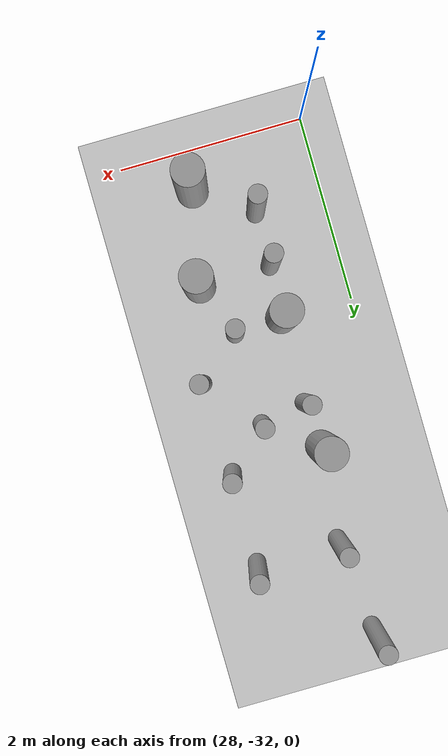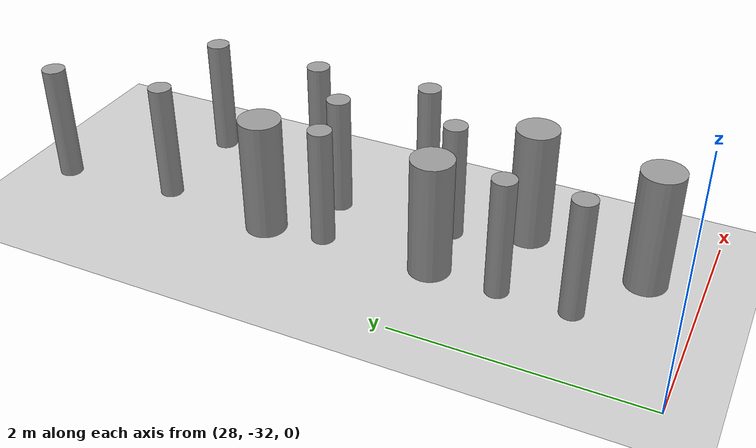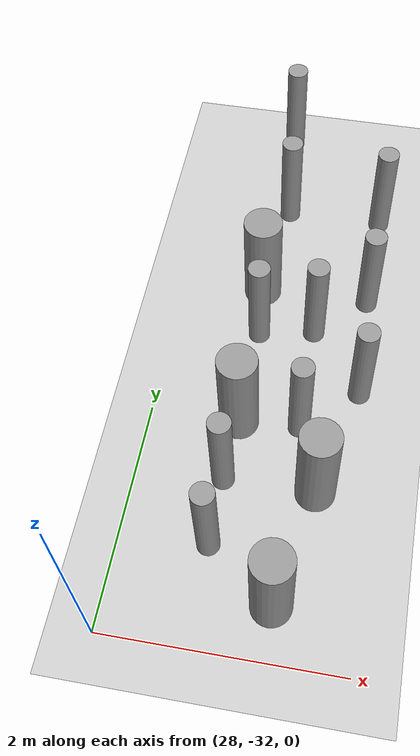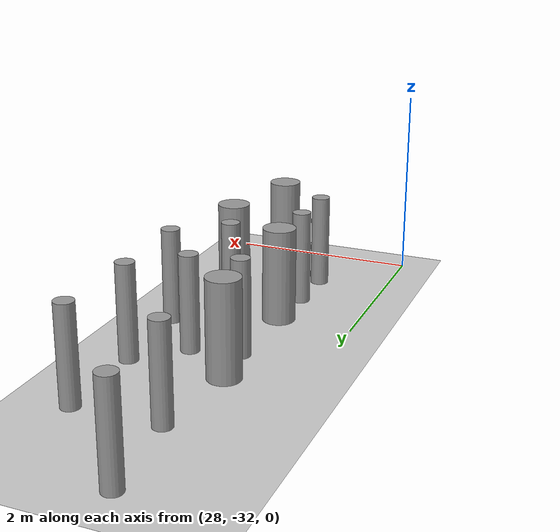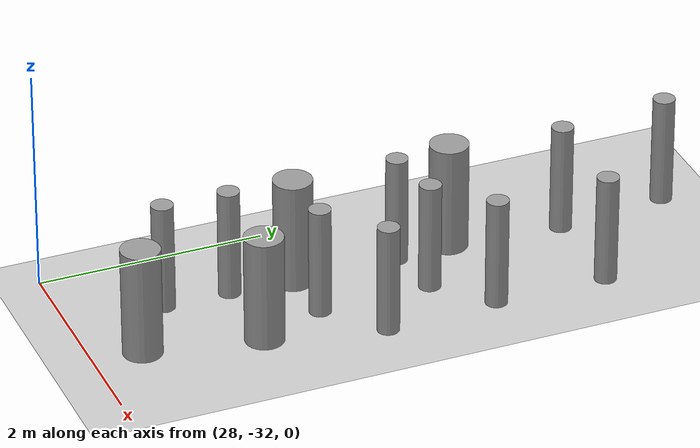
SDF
<sdf version="1.6">
 <world name="default">
  <model name="ground_plane">
   <static>1</static>
   <link name="link">
    <collision name="collision">
     <geometry><plane><normal>0 0 1</normal><size>100 100</size></plane></geometry>
     <surface><friction><ode><mu>100</mu><mu2>50</mu2></ode></friction></surface>
    </collision>
    <visual name="visual">
     <cast_shadows>0</cast_shadows>
     <geometry><plane><normal>0 0 1</normal><size>100 100</size></plane></geometry>
     <material>
      <script><uri>file://media/materials/scripts/gazebo.material</uri><name>Gazebo/Grey</name></script>
     </material>
    </visual>
   </link>
  </model>
  <model name="cyl_wall_clone_clone_1_clone_1_clone_clone_clone_1">
   <link name="link_0">
    <pose>-2.73893 -0.366465 0 0 -0 0</pose>
    <inertial>
     <mass>0.0374993</mass>
     <inertia>
      <ixx>0.00321281</ixx>
      <ixy>0</ixy>
      <ixz>0</ixz>
      <iyy>0.00321281</iyy>
      <iyz>0</iyz>
      <izz>0.000175774</izz>
     </inertia>
    </inertial>
    <visual name="visual">
     <geometry><cylinder><radius>0.0968661</radius><length>1</length></cylinder></geometry>
     <material>
      <lighting>1</lighting>
      <script><uri>file://media/materials/scripts/gazebo.material</uri><name>Gazebo/Grey</name></script>
      <ambient>0.3 0.3 0.3 1</ambient>
      <diffuse>0.7 0.7 0.7 1</diffuse>
      <specular>0.01 0.01 0.01 1</specular>
      <emissive>0 0 0 1</emissive>
     </material>
    </visual>
    <collision name="collision">
     <geometry><cylinder><radius>0.096866</radius><length>1</length></cylinder></geometry>
     <surface>
      <friction>
       <ode><mu>1</mu><mu2>1</mu2><fdir1>0 0 0</fdir1><slip1>0</slip1><slip2>0</slip2></ode>
       <torsional>
        <coefficient>1</coefficient>
        <patch_radius>0</patch_radius>
        <surface_radius>0</surface_radius>
        <use_patch_radius>1</use_patch_radius>
        <ode><slip>0</slip></ode>
       </torsional>
      </friction>
      <bounce><restitution_coefficient>0</restitution_coefficient><threshold>1e+06</threshold></bounce>
      <contact>
       <collide_without_contact>0</collide_without_contact>
       <collide_without_contact_bitmask>1</collide_without_contact_bitmask>
       <collide_bitmask>1</collide_bitmask>
       <ode>
        <soft_cfm>0</soft_cfm>
        <soft_erp>0.2</soft_erp>
        <kp>1e+13</kp>
        <kd>1</kd>
        <max_vel>0.01</max_vel>
        <min_depth>0</min_depth>
       </ode>
       <bullet>
        <split_impulse>1</split_impulse>
        <split_impulse_penetration_threshold>-0.01</split_impulse_penetration_threshold>
        <soft_cfm>0</soft_cfm>
        <soft_erp>0.2</soft_erp>
        <kp>1e+13</kp>
        <kd>1</kd>
       </bullet>
      </contact>
     </surface>
    </collision>
   </link>
   <link name="link_0_clone">
    <pose>-1.73893 0.61877 0 0 -0 0</pose>
    <inertial>
     <mass>0.0374993</mass>
     <inertia>
      <ixx>0.00321281</ixx>
      <ixy>0</ixy>
      <ixz>0</ixz>
      <iyy>0.00321281</iyy>
      <iyz>0</iyz>
      <izz>0.000175774</izz>
     </inertia>
    </inertial>
    <visual name="visual">
     <geometry><cylinder><radius>0.0968661</radius><length>1</length></cylinder></geometry>
     <material>
      <lighting>1</lighting>
      <script><uri>file://media/materials/scripts/gazebo.material</uri><name>Gazebo/Grey</name></script>
      <ambient>0.3 0.3 0.3 1</ambient>
      <diffuse>0.7 0.7 0.7 1</diffuse>
      <specular>0.01 0.01 0.01 1</specular>
      <emissive>0 0 0 1</emissive>
      <shader type="pixel"/>
     </material>
    </visual>
    <collision name="collision">
     <geometry><cylinder><radius>0.096866</radius><length>1</length></cylinder></geometry>
     <surface>
      <friction>
       <ode><mu>1</mu><mu2>1</mu2><fdir1>0 0 0</fdir1><slip1>0</slip1><slip2>0</slip2></ode>
       <torsional>
        <coefficient>1</coefficient>
        <patch_radius>0</patch_radius>
        <surface_radius>0</surface_radius>
        <use_patch_radius>1</use_patch_radius>
        <ode><slip>0</slip></ode>
       </torsional>
      </friction>
      <bounce><restitution_coefficient>0</restitution_coefficient><threshold>1e+06</threshold></bounce>
      <contact>
       <collide_without_contact>0</collide_without_contact>
       <collide_without_contact_bitmask>1</collide_without_contact_bitmask>
       <collide_bitmask>1</collide_bitmask>
       <ode>
        <soft_cfm>0</soft_cfm>
        <soft_erp>0.2</soft_erp>
        <kp>1e+13</kp>
        <kd>1</kd>
        <max_vel>0.01</max_vel>
        <min_depth>0</min_depth>
       </ode>
       <bullet>
        <split_impulse>1</split_impulse>
        <split_impulse_penetration_threshold>-0.01</split_impulse_penetration_threshold>
        <soft_cfm>0</soft_cfm>
        <soft_erp>0.2</soft_erp>
        <kp>1e+13</kp>
        <kd>1</kd>
       </bullet>
      </contact>
     </surface>
    </collision>
   </link>
   <link name="link_0_clone_clone">
    <pose>-0.327073 0.143919 0 0 -0 0</pose>
    <inertial>
     <mass>0.0374993</mass>
     <inertia>
      <ixx>0.00321281</ixx>
      <ixy>0</ixy>
      <ixz>0</ixz>
      <iyy>0.00321281</iyy>
      <iyz>0</iyz>
      <izz>0.000175774</izz>
     </inertia>
    </inertial>
    <visual name="visual">
     <geometry><cylinder><radius>0.0968661</radius><length>1</length></cylinder></geometry>
     <material>
      <lighting>1</lighting>
      <script><uri>file://media/materials/scripts/gazebo.material</uri><name>Gazebo/Grey</name></script>
      <ambient>0.3 0.3 0.3 1</ambient>
      <diffuse>0.7 0.7 0.7 1</diffuse>
      <specular>0.01 0.01 0.01 1</specular>
      <emissive>0 0 0 1</emissive>
      <shader type="pixel"/>
     </material>
    </visual>
    <collision name="collision">
     <geometry><cylinder><radius>0.096866</radius><length>1</length></cylinder></geometry>
     <surface>
      <friction>
       <ode><mu>1</mu><mu2>1</mu2><fdir1>0 0 0</fdir1><slip1>0</slip1><slip2>0</slip2></ode>
       <torsional>
        <coefficient>1</coefficient>
        <patch_radius>0</patch_radius>
        <surface_radius>0</surface_radius>
        <use_patch_radius>1</use_patch_radius>
        <ode><slip>0</slip></ode>
       </torsional>
      </friction>
      <bounce><restitution_coefficient>0</restitution_coefficient><threshold>1e+06</threshold></bounce>
      <contact>
       <collide_without_contact>0</collide_without_contact>
       <collide_without_contact_bitmask>1</collide_without_contact_bitmask>
       <collide_bitmask>1</collide_bitmask>
       <ode>
        <soft_cfm>0</soft_cfm>
        <soft_erp>0.2</soft_erp>
        <kp>1e+13</kp>
        <kd>1</kd>
        <max_vel>0.01</max_vel>
        <min_depth>0</min_depth>
       </ode>
       <bullet>
        <split_impulse>1</split_impulse>
        <split_impulse_penetration_threshold>-0.01</split_impulse_penetration_threshold>
        <soft_cfm>0</soft_cfm>
        <soft_erp>0.2</soft_erp>
        <kp>1e+13</kp>
        <kd>1</kd>
       </bullet>
      </contact>
     </surface>
    </collision>
   </link>
   <link name="link_0_clone_clone_0">
    <pose>1.26107 -0.419359 0 0 -0 0</pose>
    <inertial>
     <mass>0.0374993</mass>
     <inertia>
      <ixx>0.00321281</ixx>
      <ixy>0</ixy>
      <ixz>0</ixz>
      <iyy>0.00321281</iyy>
      <iyz>0</iyz>
      <izz>0.000175774</izz>
     </inertia>
    </inertial>
    <visual name="visual">
     <geometry><cylinder><radius>0.0968661</radius><length>1</length></cylinder></geometry>
     <material>
      <lighting>1</lighting>
      <script><uri>file://media/materials/scripts/gazebo.material</uri><name>Gazebo/Grey</name></script>
      <ambient>0.3 0.3 0.3 1</ambient>
      <diffuse>0.7 0.7 0.7 1</diffuse>
      <specular>0.01 0.01 0.01 1</specular>
      <emissive>0 0 0 1</emissive>
      <shader type="pixel"/>
     </material>
    </visual>
    <collision name="collision">
     <geometry><cylinder><radius>0.096866</radius><length>1</length></cylinder></geometry>
     <surface>
      <friction>
       <ode><mu>1</mu><mu2>1</mu2><fdir1>0 0 0</fdir1><slip1>0</slip1><slip2>0</slip2></ode>
       <torsional>
        <coefficient>1</coefficient>
        <patch_radius>0</patch_radius>
        <surface_radius>0</surface_radius>
        <use_patch_radius>1</use_patch_radius>
        <ode><slip>0</slip></ode>
       </torsional>
      </friction>
      <bounce><restitution_coefficient>0</restitution_coefficient><threshold>1e+06</threshold></bounce>
      <contact>
       <collide_without_contact>0</collide_without_contact>
       <collide_without_contact_bitmask>1</collide_without_contact_bitmask>
       <collide_bitmask>1</collide_bitmask>
       <ode>
        <soft_cfm>0</soft_cfm>
        <soft_erp>0.2</soft_erp>
        <kp>1e+13</kp>
        <kd>1</kd>
        <max_vel>0.01</max_vel>
        <min_depth>0</min_depth>
       </ode>
       <bullet>
        <split_impulse>1</split_impulse>
        <split_impulse_penetration_threshold>-0.01</split_impulse_penetration_threshold>
        <soft_cfm>0</soft_cfm>
        <soft_erp>0.2</soft_erp>
        <kp>1e+13</kp>
        <kd>1</kd>
       </bullet>
      </contact>
     </surface>
    </collision>
   </link>
   <link name="link_0_clone_clone_1">
    <pose>-1.73893 -0.277168 0 0 -0 0</pose>
    <inertial>
     <mass>0.0374993</mass>
     <inertia>
      <ixx>0.00321281</ixx>
      <ixy>0</ixy>
      <ixz>0</ixz>
      <iyy>0.00321281</iyy>
      <iyz>0</iyz>
      <izz>0.000175774</izz>
     </inertia>
    </inertial>
    <visual name="visual">
     <geometry><cylinder><radius>0.0968661</radius><length>1</length></cylinder></geometry>
     <material>
      <lighting>1</lighting>
      <script><uri>file://media/materials/scripts/gazebo.material</uri><name>Gazebo/Grey</name></script>
      <ambient>0.3 0.3 0.3 1</ambient>
      <diffuse>0.7 0.7 0.7 1</diffuse>
      <specular>0.01 0.01 0.01 1</specular>
      <emissive>0 0 0 1</emissive>
      <shader type="pixel"/>
     </material>
    </visual>
    <collision name="collision">
     <geometry><cylinder><radius>0.096866</radius><length>1</length></cylinder></geometry>
     <surface>
      <friction>
       <ode><mu>1</mu><mu2>1</mu2><fdir1>0 0 0</fdir1><slip1>0</slip1><slip2>0</slip2></ode>
       <torsional>
        <coefficient>1</coefficient>
        <patch_radius>0</patch_radius>
        <surface_radius>0</surface_radius>
        <use_patch_radius>1</use_patch_radius>
        <ode><slip>0</slip></ode>
       </torsional>
      </friction>
      <bounce><restitution_coefficient>0</restitution_coefficient><threshold>1e+06</threshold></bounce>
      <contact>
       <collide_without_contact>0</collide_without_contact>
       <collide_without_contact_bitmask>1</collide_without_contact_bitmask>
       <collide_bitmask>1</collide_bitmask>
       <ode>
        <soft_cfm>0</soft_cfm>
        <soft_erp>0.2</soft_erp>
        <kp>1e+13</kp>
        <kd>1</kd>
        <max_vel>0.01</max_vel>
        <min_depth>0</min_depth>
       </ode>
       <bullet>
        <split_impulse>1</split_impulse>
        <split_impulse_penetration_threshold>-0.01</split_impulse_penetration_threshold>
        <soft_cfm>0</soft_cfm>
        <soft_erp>0.2</soft_erp>
        <kp>1e+13</kp>
        <kd>1</kd>
       </bullet>
      </contact>
     </surface>
    </collision>
   </link>
   <link name="link_0_clone_clone_2">
    <pose>-0.738934 0.593961 0 0 -0 0</pose>
    <inertial>
     <mass>0.0374993</mass>
     <inertia>
      <ixx>0.00321281</ixx>
      <ixy>0</ixy>
      <ixz>0</ixz>
      <iyy>0.00321281</iyy>
      <iyz>0</iyz>
      <izz>0.000175774</izz>
     </inertia>
    </inertial>
    <visual name="visual">
     <geometry><cylinder><radius>0.0968661</radius><length>1</length></cylinder></geometry>
     <material>
      <lighting>1</lighting>
      <script><uri>file://media/materials/scripts/gazebo.material</uri><name>Gazebo/Grey</name></script>
      <ambient>0.3 0.3 0.3 1</ambient>
      <diffuse>0.7 0.7 0.7 1</diffuse>
      <specular>0.01 0.01 0.01 1</specular>
      <emissive>0 0 0 1</emissive>
      <shader type="pixel"/>
     </material>
    </visual>
    <collision name="collision">
     <geometry><cylinder><radius>0.096866</radius><length>1</length></cylinder></geometry>
     <surface>
      <friction>
       <ode><mu>1</mu><mu2>1</mu2><fdir1>0 0 0</fdir1><slip1>0</slip1><slip2>0</slip2></ode>
       <torsional>
        <coefficient>1</coefficient>
        <patch_radius>0</patch_radius>
        <surface_radius>0</surface_radius>
        <use_patch_radius>1</use_patch_radius>
        <ode><slip>0</slip></ode>
       </torsional>
      </friction>
      <bounce><restitution_coefficient>0</restitution_coefficient><threshold>1e+06</threshold></bounce>
      <contact>
       <collide_without_contact>0</collide_without_contact>
       <collide_without_contact_bitmask>1</collide_without_contact_bitmask>
       <collide_bitmask>1</collide_bitmask>
       <ode>
        <soft_cfm>0</soft_cfm>
        <soft_erp>0.2</soft_erp>
        <kp>1e+13</kp>
        <kd>1</kd>
        <max_vel>0.01</max_vel>
        <min_depth>0</min_depth>
       </ode>
       <bullet>
        <split_impulse>1</split_impulse>
        <split_impulse_penetration_threshold>-0.01</split_impulse_penetration_threshold>
        <soft_cfm>0</soft_cfm>
        <soft_erp>0.2</soft_erp>
        <kp>1e+13</kp>
        <kd>1</kd>
       </bullet>
      </contact>
     </surface>
    </collision>
   </link>
   <link name="link_0_clone_clone_3">
    <pose>0.261066 0.624849 0 0 -0 0</pose>
    <inertial>
     <mass>0.0374993</mass>
     <inertia>
      <ixx>0.00321281</ixx>
      <ixy>0</ixy>
      <ixz>0</ixz>
      <iyy>0.00321281</iyy>
      <iyz>0</iyz>
      <izz>0.000175774</izz>
     </inertia>
    </inertial>
    <visual name="visual">
     <geometry><cylinder><radius>0.0968661</radius><length>1</length></cylinder></geometry>
     <material>
      <lighting>1</lighting>
      <script><uri>file://media/materials/scripts/gazebo.material</uri><name>Gazebo/Grey</name></script>
      <ambient>0.3 0.3 0.3 1</ambient>
      <diffuse>0.7 0.7 0.7 1</diffuse>
      <specular>0.01 0.01 0.01 1</specular>
      <emissive>0 0 0 1</emissive>
      <shader type="pixel"/>
     </material>
    </visual>
    <collision name="collision">
     <geometry><cylinder><radius>0.096866</radius><length>1</length></cylinder></geometry>
     <surface>
      <friction>
       <ode><mu>1</mu><mu2>1</mu2><fdir1>0 0 0</fdir1><slip1>0</slip1><slip2>0</slip2></ode>
       <torsional>
        <coefficient>1</coefficient>
        <patch_radius>0</patch_radius>
        <surface_radius>0</surface_radius>
        <use_patch_radius>1</use_patch_radius>
        <ode><slip>0</slip></ode>
       </torsional>
      </friction>
      <bounce><restitution_coefficient>0</restitution_coefficient><threshold>1e+06</threshold></bounce>
      <contact>
       <collide_without_contact>0</collide_without_contact>
       <collide_without_contact_bitmask>1</collide_without_contact_bitmask>
       <collide_bitmask>1</collide_bitmask>
       <ode>
        <soft_cfm>0</soft_cfm>
        <soft_erp>0.2</soft_erp>
        <kp>1e+13</kp>
        <kd>1</kd>
        <max_vel>0.01</max_vel>
        <min_depth>0</min_depth>
       </ode>
       <bullet>
        <split_impulse>1</split_impulse>
        <split_impulse_penetration_threshold>-0.01</split_impulse_penetration_threshold>
        <soft_cfm>0</soft_cfm>
        <soft_erp>0.2</soft_erp>
        <kp>1e+13</kp>
        <kd>1</kd>
       </bullet>
      </contact>
     </surface>
    </collision>
   </link>
   <link name="link_0_clone_clone_4">
    <pose>-0.239049 -0.353105 0 0 -0 0</pose>
    <inertial>
     <mass>0.0374993</mass>
     <inertia>
      <ixx>0.00321281</ixx>
      <ixy>0</ixy>
      <ixz>0</ixz>
      <iyy>0.00321281</iyy>
      <iyz>0</iyz>
      <izz>0.000175774</izz>
     </inertia>
    </inertial>
    <visual name="visual">
     <geometry><cylinder><radius>0.0968661</radius><length>1</length></cylinder></geometry>
     <material>
      <lighting>1</lighting>
      <script><uri>file://media/materials/scripts/gazebo.material</uri><name>Gazebo/Grey</name></script>
      <ambient>0.3 0.3 0.3 1</ambient>
      <diffuse>0.7 0.7 0.7 1</diffuse>
      <specular>0.01 0.01 0.01 1</specular>
      <emissive>0 0 0 1</emissive>
      <shader type="pixel"/>
     </material>
    </visual>
    <collision name="collision">
     <geometry><cylinder><radius>0.096866</radius><length>1</length></cylinder></geometry>
     <surface>
      <friction>
       <ode><mu>1</mu><mu2>1</mu2><fdir1>0 0 0</fdir1><slip1>0</slip1><slip2>0</slip2></ode>
       <torsional>
        <coefficient>1</coefficient>
        <patch_radius>0</patch_radius>
        <surface_radius>0</surface_radius>
        <use_patch_radius>1</use_patch_radius>
        <ode><slip>0</slip></ode>
       </torsional>
      </friction>
      <bounce><restitution_coefficient>0</restitution_coefficient><threshold>1e+06</threshold></bounce>
      <contact>
       <collide_without_contact>0</collide_without_contact>
       <collide_without_contact_bitmask>1</collide_without_contact_bitmask>
       <collide_bitmask>1</collide_bitmask>
       <ode>
        <soft_cfm>0</soft_cfm>
        <soft_erp>0.2</soft_erp>
        <kp>1e+13</kp>
        <kd>1</kd>
        <max_vel>0.01</max_vel>
        <min_depth>0</min_depth>
       </ode>
       <bullet>
        <split_impulse>1</split_impulse>
        <split_impulse_penetration_threshold>-0.01</split_impulse_penetration_threshold>
        <soft_cfm>0</soft_cfm>
        <soft_erp>0.2</soft_erp>
        <kp>1e+13</kp>
        <kd>1</kd>
       </bullet>
      </contact>
     </surface>
    </collision>
   </link>
   <link name="link_0_clone_clone_5">
    <pose>0.672792 0.143919 0 0 -0 0</pose>
    <inertial>
     <mass>0.0374993</mass>
     <inertia>
      <ixx>0.00321281</ixx>
      <ixy>0</ixy>
      <ixz>0</ixz>
      <iyy>0.00321281</iyy>
      <iyz>0</iyz>
      <izz>0.000175774</izz>
     </inertia>
    </inertial>
    <visual name="visual">
     <geometry><cylinder><radius>0.0968661</radius><length>1</length></cylinder></geometry>
     <material>
      <lighting>1</lighting>
      <script><uri>file://media/materials/scripts/gazebo.material</uri><name>Gazebo/Grey</name></script>
      <ambient>0.3 0.3 0.3 1</ambient>
      <diffuse>0.7 0.7 0.7 1</diffuse>
      <specular>0.01 0.01 0.01 1</specular>
      <emissive>0 0 0 1</emissive>
      <shader type="pixel"/>
     </material>
    </visual>
    <collision name="collision">
     <geometry><cylinder><radius>0.096866</radius><length>1</length></cylinder></geometry>
     <surface>
      <friction>
       <ode><mu>1</mu><mu2>1</mu2><fdir1>0 0 0</fdir1><slip1>0</slip1><slip2>0</slip2></ode>
       <torsional>
        <coefficient>1</coefficient>
        <patch_radius>0</patch_radius>
        <surface_radius>0</surface_radius>
        <use_patch_radius>1</use_patch_radius>
        <ode><slip>0</slip></ode>
       </torsional>
      </friction>
      <bounce><restitution_coefficient>0</restitution_coefficient><threshold>1e+06</threshold></bounce>
      <contact>
       <collide_without_contact>0</collide_without_contact>
       <collide_without_contact_bitmask>1</collide_without_contact_bitmask>
       <collide_bitmask>1</collide_bitmask>
       <ode>
        <soft_cfm>0</soft_cfm>
        <soft_erp>0.2</soft_erp>
        <kp>1e+13</kp>
        <kd>1</kd>
        <max_vel>0.01</max_vel>
        <min_depth>0</min_depth>
       </ode>
       <bullet>
        <split_impulse>1</split_impulse>
        <split_impulse_penetration_threshold>-0.01</split_impulse_penetration_threshold>
        <soft_cfm>0</soft_cfm>
        <soft_erp>0.2</soft_erp>
        <kp>1e+13</kp>
        <kd>1</kd>
       </bullet>
      </contact>
     </surface>
    </collision>
   </link>
   <link name="link_0_clone_clone_6">
    <pose>1.84596 -0.433423 0 0 -0 0</pose>
    <inertial>
     <mass>0.0374993</mass>
     <inertia>
      <ixx>0.00321281</ixx>
      <ixy>0</ixy>
      <ixz>0</ixz>
      <iyy>0.00321281</iyy>
      <iyz>0</iyz>
      <izz>0.000175774</izz>
     </inertia>
    </inertial>
    <visual name="visual">
     <geometry><cylinder><radius>0.0968661</radius><length>1</length></cylinder></geometry>
     <material>
      <lighting>1</lighting>
      <script><uri>file://media/materials/scripts/gazebo.material</uri><name>Gazebo/Grey</name></script>
      <ambient>0.3 0.3 0.3 1</ambient>
      <diffuse>0.7 0.7 0.7 1</diffuse>
      <specular>0.01 0.01 0.01 1</specular>
      <emissive>0 0 0 1</emissive>
      <shader type="pixel"/>
     </material>
    </visual>
    <collision name="collision">
     <geometry><cylinder><radius>0.096866</radius><length>1</length></cylinder></geometry>
     <surface>
      <friction>
       <ode><mu>1</mu><mu2>1</mu2><fdir1>0 0 0</fdir1><slip1>0</slip1><slip2>0</slip2></ode>
       <torsional>
        <coefficient>1</coefficient>
        <patch_radius>0</patch_radius>
        <surface_radius>0</surface_radius>
        <use_patch_radius>1</use_patch_radius>
        <ode><slip>0</slip></ode>
       </torsional>
      </friction>
      <bounce><restitution_coefficient>0</restitution_coefficient><threshold>1e+06</threshold></bounce>
      <contact>
       <collide_without_contact>0</collide_without_contact>
       <collide_without_contact_bitmask>1</collide_without_contact_bitmask>
       <collide_bitmask>1</collide_bitmask>
       <ode>
        <soft_cfm>0</soft_cfm>
        <soft_erp>0.2</soft_erp>
        <kp>1e+13</kp>
        <kd>1</kd>
        <max_vel>0.01</max_vel>
        <min_depth>0</min_depth>
       </ode>
       <bullet>
        <split_impulse>1</split_impulse>
        <split_impulse_penetration_threshold>-0.01</split_impulse_penetration_threshold>
        <soft_cfm>0</soft_cfm>
        <soft_erp>0.2</soft_erp>
        <kp>1e+13</kp>
        <kd>1</kd>
       </bullet>
      </contact>
     </surface>
    </collision>
   </link>
   <link name="link_1">
    <pose>-0.738934 -0.397931 0 0 -0 0</pose>
    <inertial>
     <mass>0.117398</mass>
     <inertia>
      <ixx>0.0106445</ixx>
      <ixy>0</ixy>
      <ixz>0</ixz>
      <iyy>0.0106445</iyy>
      <iyz>0</iyz>
      <izz>0.00172278</izz>
     </inertia>
    </inertial>
    <visual name="visual">
     <geometry><cylinder><radius>0.171317</radius><length>1</length></cylinder></geometry>
     <material>
      <lighting>1</lighting>
      <script><uri>file://media/materials/scripts/gazebo.material</uri><name>Gazebo/Grey</name></script>
      <ambient>0.3 0.3 0.3 1</ambient>
      <diffuse>0.7 0.7 0.7 1</diffuse>
      <specular>0.01 0.01 0.01 1</specular>
      <emissive>0 0 0 1</emissive>
     </material>
    </visual>
    <collision name="collision">
     <geometry><cylinder><radius>0.171317</radius><length>1</length></cylinder></geometry>
     <surface>
      <friction>
       <ode><mu>1</mu><mu2>1</mu2><fdir1>0 0 0</fdir1><slip1>0</slip1><slip2>0</slip2></ode>
       <torsional>
        <coefficient>1</coefficient>
        <patch_radius>0</patch_radius>
        <surface_radius>0</surface_radius>
        <use_patch_radius>1</use_patch_radius>
        <ode><slip>0</slip></ode>
       </torsional>
      </friction>
      <bounce><restitution_coefficient>0</restitution_coefficient><threshold>1e+06</threshold></bounce>
      <contact>
       <collide_without_contact>0</collide_without_contact>
       <collide_without_contact_bitmask>1</collide_without_contact_bitmask>
       <collide_bitmask>1</collide_bitmask>
       <ode>
        <soft_cfm>0</soft_cfm>
        <soft_erp>0.2</soft_erp>
        <kp>1e+13</kp>
        <kd>1</kd>
        <max_vel>0.01</max_vel>
        <min_depth>0</min_depth>
       </ode>
       <bullet>
        <split_impulse>1</split_impulse>
        <split_impulse_penetration_threshold>-0.01</split_impulse_penetration_threshold>
        <soft_cfm>0</soft_cfm>
        <soft_erp>0.2</soft_erp>
        <kp>1e+13</kp>
        <kd>1</kd>
       </bullet>
      </contact>
     </surface>
    </collision>
   </link>
   <link name="link_1_clone">
    <pose>0.697784 -0.380861 0 0 -0 0</pose>
    <inertial>
     <mass>0.117398</mass>
     <inertia>
      <ixx>0.0106445</ixx>
      <ixy>0</ixy>
      <ixz>0</ixz>
      <iyy>0.0106445</iyy>
      <iyz>0</iyz>
      <izz>0.00172278</izz>
     </inertia>
    </inertial>
    <visual name="visual">
     <geometry><cylinder><radius>0.171317</radius><length>1</length></cylinder></geometry>
     <material>
      <lighting>1</lighting>
      <script><uri>file://media/materials/scripts/gazebo.material</uri><name>Gazebo/Grey</name></script>
      <ambient>0.3 0.3 0.3 1</ambient>
      <diffuse>0.7 0.7 0.7 1</diffuse>
      <specular>0.01 0.01 0.01 1</specular>
      <emissive>0 0 0 1</emissive>
      <shader type="pixel"/>
     </material>
    </visual>
    <collision name="collision">
     <geometry><cylinder><radius>0.171317</radius><length>1</length></cylinder></geometry>
     <surface>
      <friction>
       <ode><mu>1</mu><mu2>1</mu2><fdir1>0 0 0</fdir1><slip1>0</slip1><slip2>0</slip2></ode>
       <torsional>
        <coefficient>1</coefficient>
        <patch_radius>0</patch_radius>
        <surface_radius>0</surface_radius>
        <use_patch_radius>1</use_patch_radius>
        <ode><slip>0</slip></ode>
       </torsional>
      </friction>
      <bounce><restitution_coefficient>0</restitution_coefficient><threshold>1e+06</threshold></bounce>
      <contact>
       <collide_without_contact>0</collide_without_contact>
       <collide_without_contact_bitmask>1</collide_without_contact_bitmask>
       <collide_bitmask>1</collide_bitmask>
       <ode>
        <soft_cfm>0</soft_cfm>
        <soft_erp>0.2</soft_erp>
        <kp>1e+13</kp>
        <kd>1</kd>
        <max_vel>0.01</max_vel>
        <min_depth>0</min_depth>
       </ode>
       <bullet>
        <split_impulse>1</split_impulse>
        <split_impulse_penetration_threshold>-0.01</split_impulse_penetration_threshold>
        <soft_cfm>0</soft_cfm>
        <soft_erp>0.2</soft_erp>
        <kp>1e+13</kp>
        <kd>1</kd>
       </bullet>
      </contact>
     </surface>
    </collision>
   </link>
   <link name="link_1_clone_0">
    <pose>1.26107 0.358974 0 0 -0 0</pose>
    <inertial>
     <mass>0.117398</mass>
     <inertia>
      <ixx>0.0106445</ixx>
      <ixy>0</ixy>
      <ixz>0</ixz>
      <iyy>0.0106445</iyy>
      <iyz>0</iyz>
      <izz>0.00172278</izz>
     </inertia>
    </inertial>
    <visual name="visual">
     <geometry><cylinder><radius>0.171317</radius><length>1</length></cylinder></geometry>
     <material>
      <lighting>1</lighting>
      <script><uri>file://media/materials/scripts/gazebo.material</uri><name>Gazebo/Grey</name></script>
      <ambient>0.3 0.3 0.3 1</ambient>
      <diffuse>0.7 0.7 0.7 1</diffuse>
      <specular>0.01 0.01 0.01 1</specular>
      <emissive>0 0 0 1</emissive>
      <shader type="pixel"/>
     </material>
    </visual>
    <collision name="collision">
     <geometry><cylinder><radius>0.171317</radius><length>1</length></cylinder></geometry>
     <surface>
      <friction>
       <ode><mu>1</mu><mu2>1</mu2><fdir1>0 0 0</fdir1><slip1>0</slip1><slip2>0</slip2></ode>
       <torsional>
        <coefficient>1</coefficient>
        <patch_radius>0</patch_radius>
        <surface_radius>0</surface_radius>
        <use_patch_radius>1</use_patch_radius>
        <ode><slip>0</slip></ode>
       </torsional>
      </friction>
      <bounce><restitution_coefficient>0</restitution_coefficient><threshold>1e+06</threshold></bounce>
      <contact>
       <collide_without_contact>0</collide_without_contact>
       <collide_without_contact_bitmask>1</collide_without_contact_bitmask>
       <collide_bitmask>1</collide_bitmask>
       <ode>
        <soft_cfm>0</soft_cfm>
        <soft_erp>0.2</soft_erp>
        <kp>1e+13</kp>
        <kd>1</kd>
        <max_vel>0.01</max_vel>
        <min_depth>0</min_depth>
       </ode>
       <bullet>
        <split_impulse>1</split_impulse>
        <split_impulse_penetration_threshold>-0.01</split_impulse_penetration_threshold>
        <soft_cfm>0</soft_cfm>
        <soft_erp>0.2</soft_erp>
        <kp>1e+13</kp>
        <kd>1</kd>
       </bullet>
      </contact>
     </surface>
    </collision>
   </link>
   <link name="link_1_clone_1">
    <pose>2.26107 0.143919 0 0 -0 0</pose>
    <inertial>
     <mass>0.117398</mass>
     <inertia>
      <ixx>0.0106445</ixx>
      <ixy>0</ixy>
      <ixz>0</ixz>
      <iyy>0.0106445</iyy>
      <iyz>0</iyz>
      <izz>0.00172278</izz>
     </inertia>
    </inertial>
    <visual name="visual">
     <geometry><cylinder><radius>0.171317</radius><length>1</length></cylinder></geometry>
     <material>
      <lighting>1</lighting>
      <script><uri>file://media/materials/scripts/gazebo.material</uri><name>Gazebo/Grey</name></script>
      <ambient>0.3 0.3 0.3 1</ambient>
      <diffuse>0.7 0.7 0.7 1</diffuse>
      <specular>0.01 0.01 0.01 1</specular>
      <emissive>0 0 0 1</emissive>
      <shader type="pixel"/>
     </material>
    </visual>
    <collision name="collision">
     <geometry><cylinder><radius>0.171317</radius><length>1</length></cylinder></geometry>
     <surface>
      <friction>
       <ode><mu>1</mu><mu2>1</mu2><fdir1>0 0 0</fdir1><slip1>0</slip1><slip2>0</slip2></ode>
       <torsional>
        <coefficient>1</coefficient>
        <patch_radius>0</patch_radius>
        <surface_radius>0</surface_radius>
        <use_patch_radius>1</use_patch_radius>
        <ode><slip>0</slip></ode>
       </torsional>
      </friction>
      <bounce><restitution_coefficient>0</restitution_coefficient><threshold>1e+06</threshold></bounce>
      <contact>
       <collide_without_contact>0</collide_without_contact>
       <collide_without_contact_bitmask>1</collide_without_contact_bitmask>
       <collide_bitmask>1</collide_bitmask>
       <ode>
        <soft_cfm>0</soft_cfm>
        <soft_erp>0.2</soft_erp>
        <kp>1e+13</kp>
        <kd>1</kd>
        <max_vel>0.01</max_vel>
        <min_depth>0</min_depth>
       </ode>
       <bullet>
        <split_impulse>1</split_impulse>
        <split_impulse_penetration_threshold>-0.01</split_impulse_penetration_threshold>
        <soft_cfm>0</soft_cfm>
        <soft_erp>0.2</soft_erp>
        <kp>1e+13</kp>
        <kd>1</kd>
       </bullet>
      </contact>
     </surface>
    </collision>
   </link>
   <static>1</static>
   <pose>29.1497 -29.3036 0.5 0 0 -1.55814</pose>
  </model>
 </world>
</sdf>
